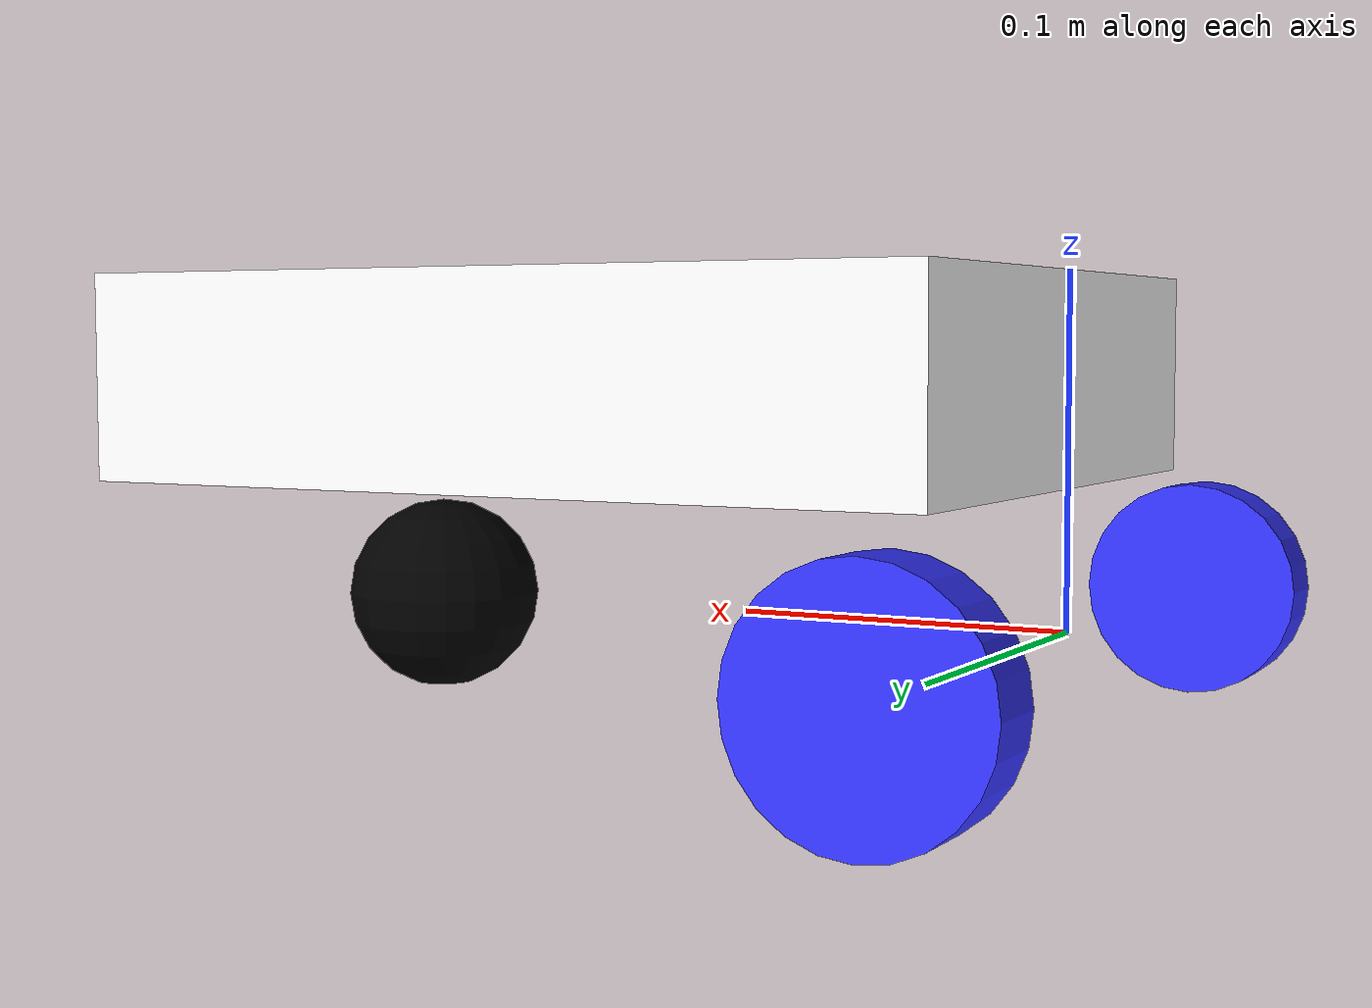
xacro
<?xml version="1.0"?>
<robot xmlns:xacro="http://www.ros.org/wiki/xacro" >

    <xacro:include filename="inertial_macros.xacro"/>

    <material name="white">
        <color rgba="1 1 1 1" />
    </material>

    <material name="orange">
        <color rgba="1 0.3 0.1 1"/>
    </material>

    <material name="blue">
        <color rgba="0.2 0.2 1 1"/>
    </material>

    <material name="black">
        <color rgba="0 0 0 1"/>
    </material>

    <material name="red">
        <color rgba="1 0 0 1"/>
    </material>

    <!-- BASE LINK -->

    <link name="base_link">

    </link>

    <!-- BASE_FOOTPRINT LINK -->

    <joint name="base_footprint_joint" type="fixed">
        <parent link="base_link"/>
        <child link="base_footprint"/>
        <origin xyz="0 0 0" rpy="0 0 0"/>
    </joint>

    <link name="base_footprint">
    </link>

    <!-- CHASSIS LINK -->

    <joint name="chassis_joint" type="fixed">
        <parent link="base_link"/>
        <child link="chassis"/>
        <origin xyz="0 0 0"/>
    </joint>

    <link name="chassis">
        <visual>
            <origin xyz="0.13 0 0.07"/>
            <geometry>
                <box size="0.26 0.20 0.06"/>
            </geometry>
            <material name="white"/>
        </visual>

        <collision>
            <origin xyz="0.13 0 0.07"/>
            <geometry>
                <box size="0.26 0.20 0.06"/>
            </geometry>
        </collision>

        <xacro:inertial_box mass="0.5" x="0.26" y="0.20" z="0.06">
            <origin xyz="0.13 0 0.07" rpy="0 0 0"/>
        </xacro:inertial_box>
    </link>

    <gazebo reference="chassis">
        <material>Gazebo/White</material>
    </gazebo>
    <!-- LEFT WHEEL LINK -->

    <joint name="left_wheel_joint" type="continuous">
        <parent link="base_link"/>
        <child link="left_wheel"/>
        <origin xyz="0 0.13 0" rpy="-${pi/2} 0 0" />
        <axis xyz="0 0 1"/>
    </joint>

    <link name="left_wheel">
        <visual>
            <geometry>
                <cylinder radius="0.034" length="0.02"/>
            </geometry>
            <material name="blue"/>
        </visual>
        <collision>
            <geometry>
                <cylinder radius="0.034" length="0.02"/>
            </geometry>
        </collision>
        <xacro:inertial_cylinder mass="0.1" length="0.02" radius="0.034">
            <origin xyz="0 0 0" rpy="0 0 0"/>
        </xacro:inertial_cylinder>
    </link>

    <gazebo reference="left_wheel">
        <material>Gazebo/Blue</material>
    </gazebo>
    <!-- RIGHT WHEEL LINK -->

    <joint name="right_wheel_joint" type="continuous">
        <parent link="base_link"/>
        <child link="right_wheel"/>
        <origin xyz="0 -0.13 0" rpy="${pi/2} 0 0" />
        <axis xyz="0 0 -1"/>
    </joint>

    <link name="right_wheel">
        <visual>
            <geometry>
                <cylinder radius="0.034" length="0.02"/>
            </geometry>
            <material name="blue"/>
        </visual>
        <collision>
            <geometry>
                <cylinder radius="0.034" length="0.02"/>
            </geometry>
        </collision>
        <xacro:inertial_cylinder mass="0.1" length="0.02" radius="0.02">
            <origin xyz="0 0 0" rpy="0 0 0"/>
        </xacro:inertial_cylinder>
    </link>

    <gazebo reference="right_wheel">
        <material>Gazebo/Blue</material>
    </gazebo>
    <!-- CASTER WHEEL LINK -->

    <joint name="caster_wheel_joint" type="fixed">
        <parent link="chassis"/>
        <child link="caster_wheel"/>
        <origin xyz="0.21 0 0"/>
    </joint>

    <link name="caster_wheel">
        <visual>
            <geometry>
                <sphere radius="0.03"/>
            </geometry>
            <material name="black"/>
        </visual>
        <collision>
            <geometry>
                <sphere radius="0.035"/>
            </geometry>
        </collision>
        <xacro:inertial_sphere mass="0.1" radius="0.03">
            <origin xyz="0 0 0" rpy="0 0 0"/>
        </xacro:inertial_sphere>
    </link>
    <gazebo reference="caster_wheel">
        <material>Gazebo/Black</material>
        <mu1 value="0.001"/>
        <mu2 value="0.001"/>
    </gazebo>

</robot>
